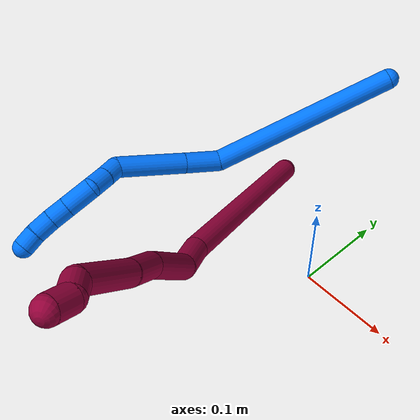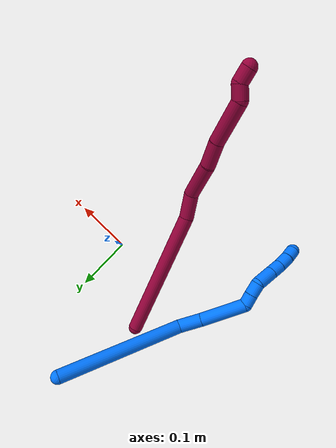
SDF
<sdf version="1.7">
 <world name="default">
  <model name="8">
   <static>0</static>
   <link name="8">
    <collision name="collision-cylinder-e_1_1_4">
     <pose>0.022063 -0.020436 0.111513 0.181251 0.192206 0.01752</pose>
     <geometry><cylinder><radius>0.0125</radius><length>0.230994</length></cylinder></geometry>
     <surface>
      <friction><ode><mu>1.16</mu><mu2>1.16</mu2><slip1>0</slip1><slip2>0</slip2></ode></friction>
      <contact><ode><kp>1e+06</kp><kd>1</kd><max_vel>0</max_vel><min_depth>0.001</min_depth></ode></contact>
     </surface>
    </collision>
    <visual name="visual-cylinder-e_1_1_4">
     <pose>0.022063 -0.020436 0.111513 0.181251 0.192206 0.01752</pose>
     <geometry><cylinder><radius>0.0125</radius><length>0.230994</length></cylinder></geometry>
     <material><ambient>0.584314 0 0.227451 1</ambient></material>
    </visual>
    <collision name="collision-cylinder-e_2_4_5">
     <pose>0.043272 -0.046117 0.24401 0.244924 -0.039443 -0.004855</pose>
     <geometry><cylinder><radius>0.0125</radius><length>0.043291</length></cylinder></geometry>
     <surface>
      <friction><ode><mu>1.16</mu><mu2>1.16</mu2><slip1>0</slip1><slip2>0</slip2></ode></friction>
      <contact><ode><kp>1e+06</kp><kd>1</kd><max_vel>0</max_vel><min_depth>0.001</min_depth></ode></contact>
     </surface>
    </collision>
    <visual name="visual-cylinder-e_2_4_5">
     <pose>0.043272 -0.046117 0.24401 0.244924 -0.039443 -0.004855</pose>
     <geometry><cylinder><radius>0.0125</radius><length>0.043291</length></cylinder></geometry>
     <material><ambient>0.584314 0 0.227451 1</ambient></material>
    </visual>
    <collision name="collision-cylinder-e_3_5_6">
     <pose>0.047508 -0.071028 0.289702 0.672264 0.159799 0.055937</pose>
     <geometry><cylinder><radius>0.0125</radius><length>0.063975</length></cylinder></geometry>
     <surface>
      <friction><ode><mu>1.16</mu><mu2>1.16</mu2><slip1>0</slip1><slip2>0</slip2></ode></friction>
      <contact><ode><kp>1e+06</kp><kd>1</kd><max_vel>0</max_vel><min_depth>0.001</min_depth></ode></contact>
     </surface>
    </collision>
    <visual name="visual-cylinder-e_3_5_6">
     <pose>0.047508 -0.071028 0.289702 0.672264 0.159799 0.055937</pose>
     <geometry><cylinder><radius>0.0125</radius><length>0.063975</length></cylinder></geometry>
     <material><ambient>0.584314 0 0.227451 1</ambient></material>
    </visual>
    <collision name="collision-cylinder-e_4_6_7">
     <pose>0.053825 -0.100933 0.3329 0.505669 0.057975 0.014983</pose>
     <geometry><cylinder><radius>0.0125</radius><length>0.04234</length></cylinder></geometry>
     <surface>
      <friction><ode><mu>1.16</mu><mu2>1.16</mu2><slip1>0</slip1><slip2>0</slip2></ode></friction>
      <contact><ode><kp>1e+06</kp><kd>1</kd><max_vel>0</max_vel><min_depth>0.001</min_depth></ode></contact>
     </surface>
    </collision>
    <visual name="visual-cylinder-e_4_6_7">
     <pose>0.053825 -0.100933 0.3329 0.505669 0.057975 0.014983</pose>
     <geometry><cylinder><radius>0.0125</radius><length>0.04234</length></cylinder></geometry>
     <material><ambient>0.584314 0 0.227451 1</ambient></material>
    </visual>
    <collision name="collision-cylinder-e_5_7_8">
     <pose>0.061709 -0.130283 0.380983 0.573447 0.186784 0.05522</pose>
     <geometry><cylinder><radius>0.0125</radius><length>0.071704</length></cylinder></geometry>
     <surface>
      <friction><ode><mu>1.16</mu><mu2>1.16</mu2><slip1>0</slip1><slip2>0</slip2></ode></friction>
      <contact><ode><kp>1e+06</kp><kd>1</kd><max_vel>0</max_vel><min_depth>0.001</min_depth></ode></contact>
     </surface>
    </collision>
    <visual name="visual-cylinder-e_5_7_8">
     <pose>0.061709 -0.130283 0.380983 0.573447 0.186784 0.05522</pose>
     <geometry><cylinder><radius>0.0125</radius><length>0.071704</length></cylinder></geometry>
     <material><ambient>0.584314 0 0.227451 1</ambient></material>
    </visual>
    <collision name="collision-cylinder-e_6_8_9">
     <pose>0.064859 -0.151298 0.421858 0.167093 -0.297535 -0.0251</pose>
     <geometry><cylinder><radius>0.0125</radius><length>0.023933</length></cylinder></geometry>
     <surface>
      <friction><ode><mu>1.16</mu><mu2>1.16</mu2><slip1>0</slip1><slip2>0</slip2></ode></friction>
      <contact><ode><kp>1e+06</kp><kd>1</kd><max_vel>0</max_vel><min_depth>0.001</min_depth></ode></contact>
     </surface>
    </collision>
    <visual name="visual-cylinder-e_6_8_9">
     <pose>0.064859 -0.151298 0.421858 0.167093 -0.297535 -0.0251</pose>
     <geometry><cylinder><radius>0.0125</radius><length>0.023933</length></cylinder></geometry>
     <material><ambient>0.584314 0 0.227451 1</ambient></material>
    </visual>
    <collision name="collision-cylinder-e_7_9_2">
     <pose>0.064746 -0.156613 0.444001 0.304414 0.289823 0.044763</pose>
     <geometry><cylinder><radius>0.0125</radius><length>0.023761</length></cylinder></geometry>
     <surface>
      <friction><ode><mu>1.16</mu><mu2>1.16</mu2><slip1>0</slip1><slip2>0</slip2></ode></friction>
      <contact><ode><kp>1e+06</kp><kd>1</kd><max_vel>0</max_vel><min_depth>0.001</min_depth></ode></contact>
     </surface>
    </collision>
    <visual name="visual-cylinder-e_7_9_2">
     <pose>0.064746 -0.156613 0.444001 0.304414 0.289823 0.044763</pose>
     <geometry><cylinder><radius>0.0125</radius><length>0.023761</length></cylinder></geometry>
     <material><ambient>0.584314 0 0.227451 1</ambient></material>
    </visual>
    <collision name="collision-sphere-2">
     <pose>0.068141 -0.160026 0.454862 0 -0 0</pose>
     <geometry><sphere><radius>0.0125</radius></sphere></geometry>
     <surface>
      <friction><ode><mu>1.16</mu><mu2>1.16</mu2><slip1>0</slip1><slip2>0</slip2></ode></friction>
      <contact><ode><kp>1e+06</kp><kd>1</kd><max_vel>0</max_vel><min_depth>0.001</min_depth></ode></contact>
     </surface>
    </collision>
    <visual name="visual-sphere-2">
     <pose>0.068141 -0.160026 0.454862 0 -0 0</pose>
     <geometry><sphere><radius>0.0125</radius></sphere></geometry>
     <material><ambient>0.584314 0 0.227451 1</ambient></material>
    </visual>
    <collision name="collision-sphere-9">
     <pose>0.061351 -0.153201 0.433139 0 -0 0</pose>
     <geometry><sphere><radius>0.0125</radius></sphere></geometry>
     <surface>
      <friction><ode><mu>1.16</mu><mu2>1.16</mu2><slip1>0</slip1><slip2>0</slip2></ode></friction>
      <contact><ode><kp>1e+06</kp><kd>1</kd><max_vel>0</max_vel><min_depth>0.001</min_depth></ode></contact>
     </surface>
    </collision>
    <visual name="visual-sphere-9">
     <pose>0.061351 -0.153201 0.433139 0 -0 0</pose>
     <geometry><sphere><radius>0.0125</radius></sphere></geometry>
     <material><ambient>0.584314 0 0.227451 1</ambient></material>
    </visual>
    <collision name="collision-sphere-4">
     <pose>0.044126 -0.040872 0.223026 0 -0 0</pose>
     <geometry><sphere><radius>0.0125</radius></sphere></geometry>
     <surface>
      <friction><ode><mu>1.16</mu><mu2>1.16</mu2><slip1>0</slip1><slip2>0</slip2></ode></friction>
      <contact><ode><kp>1e+06</kp><kd>1</kd><max_vel>0</max_vel><min_depth>0.001</min_depth></ode></contact>
     </surface>
    </collision>
    <visual name="visual-sphere-4">
     <pose>0.044126 -0.040872 0.223026 0 -0 0</pose>
     <geometry><sphere><radius>0.0125</radius></sphere></geometry>
     <material><ambient>0.584314 0 0.227451 1</ambient></material>
    </visual>
    <collision name="collision-sphere-1">
     <geometry><sphere><radius>0.0125</radius></sphere></geometry>
     <surface>
      <friction><ode><mu>1.16</mu><mu2>1.16</mu2><slip1>0</slip1><slip2>0</slip2></ode></friction>
      <contact><ode><kp>1e+06</kp><kd>1</kd><max_vel>0</max_vel><min_depth>0.001</min_depth></ode></contact>
     </surface>
    </collision>
    <visual name="visual-sphere-1">
     <geometry><sphere><radius>0.0125</radius></sphere></geometry>
     <material><ambient>0.584314 0 0.227451 1</ambient></material>
    </visual>
    <collision name="collision-sphere-8">
     <pose>0.068367 -0.149395 0.410576 0 -0 0</pose>
     <geometry><sphere><radius>0.0125</radius></sphere></geometry>
     <surface>
      <friction><ode><mu>1.16</mu><mu2>1.16</mu2><slip1>0</slip1><slip2>0</slip2></ode></friction>
      <contact><ode><kp>1e+06</kp><kd>1</kd><max_vel>0</max_vel><min_depth>0.001</min_depth></ode></contact>
     </surface>
    </collision>
    <visual name="visual-sphere-8">
     <pose>0.068367 -0.149395 0.410576 0 -0 0</pose>
     <geometry><sphere><radius>0.0125</radius></sphere></geometry>
     <material><ambient>0.584314 0 0.227451 1</ambient></material>
    </visual>
    <collision name="collision-sphere-5">
     <pose>0.042419 -0.051362 0.264993 0 -0 0</pose>
     <geometry><sphere><radius>0.0125</radius></sphere></geometry>
     <surface>
      <friction><ode><mu>1.16</mu><mu2>1.16</mu2><slip1>0</slip1><slip2>0</slip2></ode></friction>
      <contact><ode><kp>1e+06</kp><kd>1</kd><max_vel>0</max_vel><min_depth>0.001</min_depth></ode></contact>
     </surface>
    </collision>
    <visual name="visual-sphere-5">
     <pose>0.042419 -0.051362 0.264993 0 -0 0</pose>
     <geometry><sphere><radius>0.0125</radius></sphere></geometry>
     <material><ambient>0.584314 0 0.227451 1</ambient></material>
    </visual>
    <collision name="collision-sphere-6">
     <pose>0.052598 -0.090695 0.314411 0 -0 0</pose>
     <geometry><sphere><radius>0.0125</radius></sphere></geometry>
     <surface>
      <friction><ode><mu>1.16</mu><mu2>1.16</mu2><slip1>0</slip1><slip2>0</slip2></ode></friction>
      <contact><ode><kp>1e+06</kp><kd>1</kd><max_vel>0</max_vel><min_depth>0.001</min_depth></ode></contact>
     </surface>
    </collision>
    <visual name="visual-sphere-6">
     <pose>0.052598 -0.090695 0.314411 0 -0 0</pose>
     <geometry><sphere><radius>0.0125</radius></sphere></geometry>
     <material><ambient>0.584314 0 0.227451 1</ambient></material>
    </visual>
    <collision name="collision-sphere-7">
     <pose>0.055052 -0.11117 0.35139 0 -0 0</pose>
     <geometry><sphere><radius>0.0125</radius></sphere></geometry>
     <surface>
      <friction><ode><mu>1.16</mu><mu2>1.16</mu2><slip1>0</slip1><slip2>0</slip2></ode></friction>
      <contact><ode><kp>1e+06</kp><kd>1</kd><max_vel>0</max_vel><min_depth>0.001</min_depth></ode></contact>
     </surface>
    </collision>
    <visual name="visual-sphere-7">
     <pose>0.055052 -0.11117 0.35139 0 -0 0</pose>
     <geometry><sphere><radius>0.0125</radius></sphere></geometry>
     <material><ambient>0.584314 0 0.227451 1</ambient></material>
    </visual>
    <inertial>
     <pose>0.039607 -0.064438 0.233832 0 -0 0</pose>
     <mass>0.5</mass>
     <inertia><ixx>0.001121</ixx><ixy>0</ixy><ixz>0</ixz><iyy>0.001095</iyy><iyz>0</iyz><izz>5e-05</izz></inertia>
    </inertial>
   </link>
   <pose>-0.126287 0.092506 0.011536 -1.3606 0.155831 -2.55463</pose>
  </model>
  <model name="14">
   <static>0</static>
   <link name="14">
    <collision name="collision-cylinder-e_1_1_4">
     <pose>-0.059992 -0.029181 0.092297 0.30622 -0.554818 -0.087828</pose>
     <geometry><cylinder><radius>0.0125</radius><length>0.227765</length></cylinder></geometry>
     <surface>
      <friction><ode><mu>1.16</mu><mu2>1.16</mu2><slip1>0</slip1><slip2>0</slip2></ode></friction>
      <contact><ode><kp>1e+06</kp><kd>1</kd><max_vel>0</max_vel><min_depth>0.001</min_depth></ode></contact>
     </surface>
    </collision>
    <visual name="visual-cylinder-e_1_1_4">
     <pose>-0.059992 -0.029181 0.092297 0.30622 -0.554818 -0.087828</pose>
     <geometry><cylinder><radius>0.0125</radius><length>0.227765</length></cylinder></geometry>
     <material><ambient>0 0.462745 1 1</ambient></material>
    </visual>
    <collision name="collision-cylinder-e_2_4_5">
     <pose>-0.133313 -0.053721 0.201007 -0.275528 -0.663302 0.095416</pose>
     <geometry><cylinder><radius>0.0125</radius><length>0.043295</length></cylinder></geometry>
     <surface>
      <friction><ode><mu>1.16</mu><mu2>1.16</mu2><slip1>0</slip1><slip2>0</slip2></ode></friction>
      <contact><ode><kp>1e+06</kp><kd>1</kd><max_vel>0</max_vel><min_depth>0.001</min_depth></ode></contact>
     </surface>
    </collision>
    <visual name="visual-cylinder-e_2_4_5">
     <pose>-0.133313 -0.053721 0.201007 -0.275528 -0.663302 0.095416</pose>
     <geometry><cylinder><radius>0.0125</radius><length>0.043295</length></cylinder></geometry>
     <material><ambient>0 0.462745 1 1</ambient></material>
    </visual>
    <collision name="collision-cylinder-e_3_5_6">
     <pose>-0.170971 -0.037852 0.249709 -0.334674 -0.618535 0.10784</pose>
     <geometry><cylinder><radius>0.0125</radius><length>0.083916</length></cylinder></geometry>
     <surface>
      <friction><ode><mu>1.16</mu><mu2>1.16</mu2><slip1>0</slip1><slip2>0</slip2></ode></friction>
      <contact><ode><kp>1e+06</kp><kd>1</kd><max_vel>0</max_vel><min_depth>0.001</min_depth></ode></contact>
     </surface>
    </collision>
    <visual name="visual-cylinder-e_3_5_6">
     <pose>-0.170971 -0.037852 0.249709 -0.334674 -0.618535 0.10784</pose>
     <geometry><cylinder><radius>0.0125</radius><length>0.083916</length></cylinder></geometry>
     <material><ambient>0 0.462745 1 1</ambient></material>
    </visual>
    <collision name="collision-cylinder-e_4_6_7">
     <pose>-0.194279 -0.024378 0.292244 -0.215819 0.097005 -0.010517</pose>
     <geometry><cylinder><radius>0.0125</radius><length>0.02108</length></cylinder></geometry>
     <surface>
      <friction><ode><mu>1.16</mu><mu2>1.16</mu2><slip1>0</slip1><slip2>0</slip2></ode></friction>
      <contact><ode><kp>1e+06</kp><kd>1</kd><max_vel>0</max_vel><min_depth>0.001</min_depth></ode></contact>
     </surface>
    </collision>
    <visual name="visual-cylinder-e_4_6_7">
     <pose>-0.194279 -0.024378 0.292244 -0.215819 0.097005 -0.010517</pose>
     <geometry><cylinder><radius>0.0125</radius><length>0.02108</length></cylinder></geometry>
     <material><ambient>0 0.462745 1 1</ambient></material>
    </visual>
    <collision name="collision-cylinder-e_5_7_8">
     <pose>-0.192649 -0.019765 0.313882 -0.204829 0.052353 -0.005382</pose>
     <geometry><cylinder><radius>0.0125</radius><length>0.023299</length></cylinder></geometry>
     <surface>
      <friction><ode><mu>1.16</mu><mu2>1.16</mu2><slip1>0</slip1><slip2>0</slip2></ode></friction>
      <contact><ode><kp>1e+06</kp><kd>1</kd><max_vel>0</max_vel><min_depth>0.001</min_depth></ode></contact>
     </surface>
    </collision>
    <visual name="visual-cylinder-e_5_7_8">
     <pose>-0.192649 -0.019765 0.313882 -0.204829 0.052353 -0.005382</pose>
     <geometry><cylinder><radius>0.0125</radius><length>0.023299</length></cylinder></geometry>
     <material><ambient>0 0.462745 1 1</ambient></material>
    </visual>
    <collision name="collision-cylinder-e_6_8_9">
     <pose>-0.196925 -0.021993 0.341407 0.277413 -0.283414 -0.039827</pose>
     <geometry><cylinder><radius>0.0125</radius><length>0.034946</length></cylinder></geometry>
     <surface>
      <friction><ode><mu>1.16</mu><mu2>1.16</mu2><slip1>0</slip1><slip2>0</slip2></ode></friction>
      <contact><ode><kp>1e+06</kp><kd>1</kd><max_vel>0</max_vel><min_depth>0.001</min_depth></ode></contact>
     </surface>
    </collision>
    <visual name="visual-cylinder-e_6_8_9">
     <pose>-0.196925 -0.021993 0.341407 0.277413 -0.283414 -0.039827</pose>
     <geometry><cylinder><radius>0.0125</radius><length>0.034946</length></cylinder></geometry>
     <material><ambient>0 0.462745 1 1</ambient></material>
    </visual>
    <collision name="collision-cylinder-e_7_9_10">
     <pose>-0.204943 -0.029485 0.367796 0.275405 -0.285889 -0.039885</pose>
     <geometry><cylinder><radius>0.0125</radius><length>0.022213</length></cylinder></geometry>
     <surface>
      <friction><ode><mu>1.16</mu><mu2>1.16</mu2><slip1>0</slip1><slip2>0</slip2></ode></friction>
      <contact><ode><kp>1e+06</kp><kd>1</kd><max_vel>0</max_vel><min_depth>0.001</min_depth></ode></contact>
     </surface>
    </collision>
    <visual name="visual-cylinder-e_7_9_10">
     <pose>-0.204943 -0.029485 0.367796 0.275405 -0.285889 -0.039885</pose>
     <geometry><cylinder><radius>0.0125</radius><length>0.022213</length></cylinder></geometry>
     <material><ambient>0 0.462745 1 1</ambient></material>
    </visual>
    <collision name="collision-cylinder-e_8_10_11">
     <pose>-0.210508 -0.035375 0.389062 0.265276 -0.210019 -0.028123</pose>
     <geometry><cylinder><radius>0.0125</radius><length>0.023335</length></cylinder></geometry>
     <surface>
      <friction><ode><mu>1.16</mu><mu2>1.16</mu2><slip1>0</slip1><slip2>0</slip2></ode></friction>
      <contact><ode><kp>1e+06</kp><kd>1</kd><max_vel>0</max_vel><min_depth>0.001</min_depth></ode></contact>
     </surface>
    </collision>
    <visual name="visual-cylinder-e_8_10_11">
     <pose>-0.210508 -0.035375 0.389062 0.265276 -0.210019 -0.028123</pose>
     <geometry><cylinder><radius>0.0125</radius><length>0.023335</length></cylinder></geometry>
     <material><ambient>0 0.462745 1 1</ambient></material>
    </visual>
    <collision name="collision-cylinder-e_9_11_2">
     <pose>-0.213979 -0.041735 0.409512 0.342852 -0.103262 -0.017893</pose>
     <geometry><cylinder><radius>0.0125</radius><length>0.020149</length></cylinder></geometry>
     <surface>
      <friction><ode><mu>1.16</mu><mu2>1.16</mu2><slip1>0</slip1><slip2>0</slip2></ode></friction>
      <contact><ode><kp>1e+06</kp><kd>1</kd><max_vel>0</max_vel><min_depth>0.001</min_depth></ode></contact>
     </surface>
    </collision>
    <visual name="visual-cylinder-e_9_11_2">
     <pose>-0.213979 -0.041735 0.409512 0.342852 -0.103262 -0.017893</pose>
     <geometry><cylinder><radius>0.0125</radius><length>0.020149</length></cylinder></geometry>
     <material><ambient>0 0.462745 1 1</ambient></material>
    </visual>
    <collision name="collision-sphere-2">
     <pose>-0.215018 -0.045104 0.41895 0 -0 0</pose>
     <geometry><sphere><radius>0.0125</radius></sphere></geometry>
     <surface>
      <friction><ode><mu>1.16</mu><mu2>1.16</mu2><slip1>0</slip1><slip2>0</slip2></ode></friction>
      <contact><ode><kp>1e+06</kp><kd>1</kd><max_vel>0</max_vel><min_depth>0.001</min_depth></ode></contact>
     </surface>
    </collision>
    <visual name="visual-sphere-2">
     <pose>-0.215018 -0.045104 0.41895 0 -0 0</pose>
     <geometry><sphere><radius>0.0125</radius></sphere></geometry>
     <material><ambient>0 0.462745 1 1</ambient></material>
    </visual>
    <collision name="collision-sphere-11">
     <pose>-0.212941 -0.038366 0.400075 0 -0 0</pose>
     <geometry><sphere><radius>0.0125</radius></sphere></geometry>
     <surface>
      <friction><ode><mu>1.16</mu><mu2>1.16</mu2><slip1>0</slip1><slip2>0</slip2></ode></friction>
      <contact><ode><kp>1e+06</kp><kd>1</kd><max_vel>0</max_vel><min_depth>0.001</min_depth></ode></contact>
     </surface>
    </collision>
    <visual name="visual-sphere-11">
     <pose>-0.212941 -0.038366 0.400075 0 -0 0</pose>
     <geometry><sphere><radius>0.0125</radius></sphere></geometry>
     <material><ambient>0 0.462745 1 1</ambient></material>
    </visual>
    <collision name="collision-sphere-10">
     <pose>-0.208076 -0.032383 0.37805 0 -0 0</pose>
     <geometry><sphere><radius>0.0125</radius></sphere></geometry>
     <surface>
      <friction><ode><mu>1.16</mu><mu2>1.16</mu2><slip1>0</slip1><slip2>0</slip2></ode></friction>
      <contact><ode><kp>1e+06</kp><kd>1</kd><max_vel>0</max_vel><min_depth>0.001</min_depth></ode></contact>
     </surface>
    </collision>
    <visual name="visual-sphere-10">
     <pose>-0.208076 -0.032383 0.37805 0 -0 0</pose>
     <geometry><sphere><radius>0.0125</radius></sphere></geometry>
     <material><ambient>0 0.462745 1 1</ambient></material>
    </visual>
    <collision name="collision-sphere-9">
     <pose>-0.201811 -0.026587 0.357542 0 -0 0</pose>
     <geometry><sphere><radius>0.0125</radius></sphere></geometry>
     <surface>
      <friction><ode><mu>1.16</mu><mu2>1.16</mu2><slip1>0</slip1><slip2>0</slip2></ode></friction>
      <contact><ode><kp>1e+06</kp><kd>1</kd><max_vel>0</max_vel><min_depth>0.001</min_depth></ode></contact>
     </surface>
    </collision>
    <visual name="visual-sphere-9">
     <pose>-0.201811 -0.026587 0.357542 0 -0 0</pose>
     <geometry><sphere><radius>0.0125</radius></sphere></geometry>
     <material><ambient>0 0.462745 1 1</ambient></material>
    </visual>
    <collision name="collision-sphere-4">
     <pose>-0.119984 -0.058362 0.184593 0 -0 0</pose>
     <geometry><sphere><radius>0.0125</radius></sphere></geometry>
     <surface>
      <friction><ode><mu>1.16</mu><mu2>1.16</mu2><slip1>0</slip1><slip2>0</slip2></ode></friction>
      <contact><ode><kp>1e+06</kp><kd>1</kd><max_vel>0</max_vel><min_depth>0.001</min_depth></ode></contact>
     </surface>
    </collision>
    <visual name="visual-sphere-4">
     <pose>-0.119984 -0.058362 0.184593 0 -0 0</pose>
     <geometry><sphere><radius>0.0125</radius></sphere></geometry>
     <material><ambient>0 0.462745 1 1</ambient></material>
    </visual>
    <collision name="collision-sphere-1">
     <geometry><sphere><radius>0.0125</radius></sphere></geometry>
     <surface>
      <friction><ode><mu>1.16</mu><mu2>1.16</mu2><slip1>0</slip1><slip2>0</slip2></ode></friction>
      <contact><ode><kp>1e+06</kp><kd>1</kd><max_vel>0</max_vel><min_depth>0.001</min_depth></ode></contact>
     </surface>
    </collision>
    <visual name="visual-sphere-1">
     <geometry><sphere><radius>0.0125</radius></sphere></geometry>
     <material><ambient>0 0.462745 1 1</ambient></material>
    </visual>
    <collision name="collision-sphere-8">
     <pose>-0.192039 -0.017398 0.325273 0 -0 0</pose>
     <geometry><sphere><radius>0.0125</radius></sphere></geometry>
     <surface>
      <friction><ode><mu>1.16</mu><mu2>1.16</mu2><slip1>0</slip1><slip2>0</slip2></ode></friction>
      <contact><ode><kp>1e+06</kp><kd>1</kd><max_vel>0</max_vel><min_depth>0.001</min_depth></ode></contact>
     </surface>
    </collision>
    <visual name="visual-sphere-8">
     <pose>-0.192039 -0.017398 0.325273 0 -0 0</pose>
     <geometry><sphere><radius>0.0125</radius></sphere></geometry>
     <material><ambient>0 0.462745 1 1</ambient></material>
    </visual>
    <collision name="collision-sphere-5">
     <pose>-0.146642 -0.049081 0.217421 0 -0 0</pose>
     <geometry><sphere><radius>0.0125</radius></sphere></geometry>
     <surface>
      <friction><ode><mu>1.16</mu><mu2>1.16</mu2><slip1>0</slip1><slip2>0</slip2></ode></friction>
      <contact><ode><kp>1e+06</kp><kd>1</kd><max_vel>0</max_vel><min_depth>0.001</min_depth></ode></contact>
     </surface>
    </collision>
    <visual name="visual-sphere-5">
     <pose>-0.146642 -0.049081 0.217421 0 -0 0</pose>
     <geometry><sphere><radius>0.0125</radius></sphere></geometry>
     <material><ambient>0 0.462745 1 1</ambient></material>
    </visual>
    <collision name="collision-sphere-6">
     <pose>-0.1953 -0.026624 0.281997 0 -0 0</pose>
     <geometry><sphere><radius>0.0125</radius></sphere></geometry>
     <surface>
      <friction><ode><mu>1.16</mu><mu2>1.16</mu2><slip1>0</slip1><slip2>0</slip2></ode></friction>
      <contact><ode><kp>1e+06</kp><kd>1</kd><max_vel>0</max_vel><min_depth>0.001</min_depth></ode></contact>
     </surface>
    </collision>
    <visual name="visual-sphere-6">
     <pose>-0.1953 -0.026624 0.281997 0 -0 0</pose>
     <geometry><sphere><radius>0.0125</radius></sphere></geometry>
     <material><ambient>0 0.462745 1 1</ambient></material>
    </visual>
    <collision name="collision-sphere-7">
     <pose>-0.193258 -0.022131 0.302492 0 -0 0</pose>
     <geometry><sphere><radius>0.0125</radius></sphere></geometry>
     <surface>
      <friction><ode><mu>1.16</mu><mu2>1.16</mu2><slip1>0</slip1><slip2>0</slip2></ode></friction>
      <contact><ode><kp>1e+06</kp><kd>1</kd><max_vel>0</max_vel><min_depth>0.001</min_depth></ode></contact>
     </surface>
    </collision>
    <visual name="visual-sphere-7">
     <pose>-0.193258 -0.022131 0.302492 0 -0 0</pose>
     <geometry><sphere><radius>0.0125</radius></sphere></geometry>
     <material><ambient>0 0.462745 1 1</ambient></material>
    </visual>
    <inertial>
     <pose>-0.12605 -0.032426 0.203168 0 -0 0</pose>
     <mass>0.5</mass>
     <inertia>
      <ixx>0.000818</ixx>
      <ixy>0</ixy>
      <ixz>0</ixz>
      <iyy>0.000957</iyy>
      <iyz>0</iyz>
      <izz>0.000835</izz>
     </inertia>
    </inertial>
   </link>
   <pose>-0.090097 0.227203 0.102433 1.69672 0.033885 0.165052</pose>
  </model>
 </world>
</sdf>
